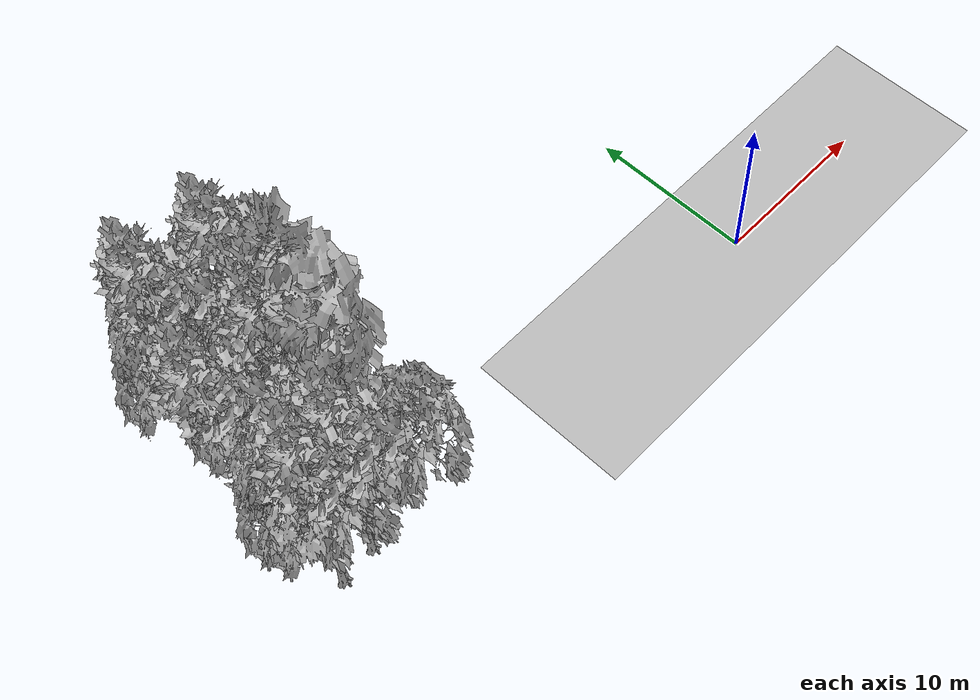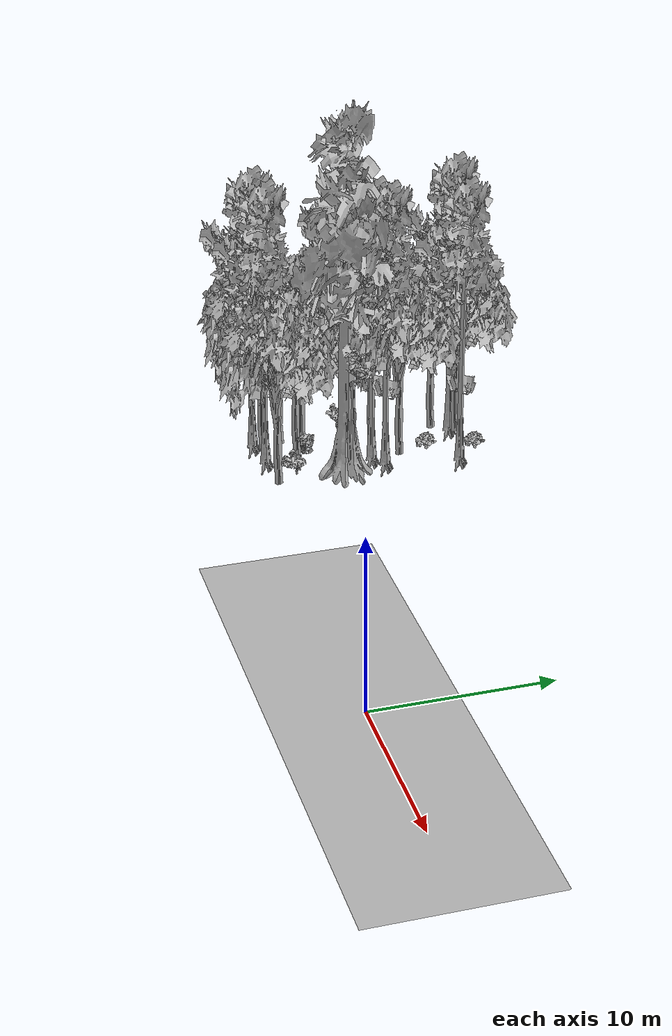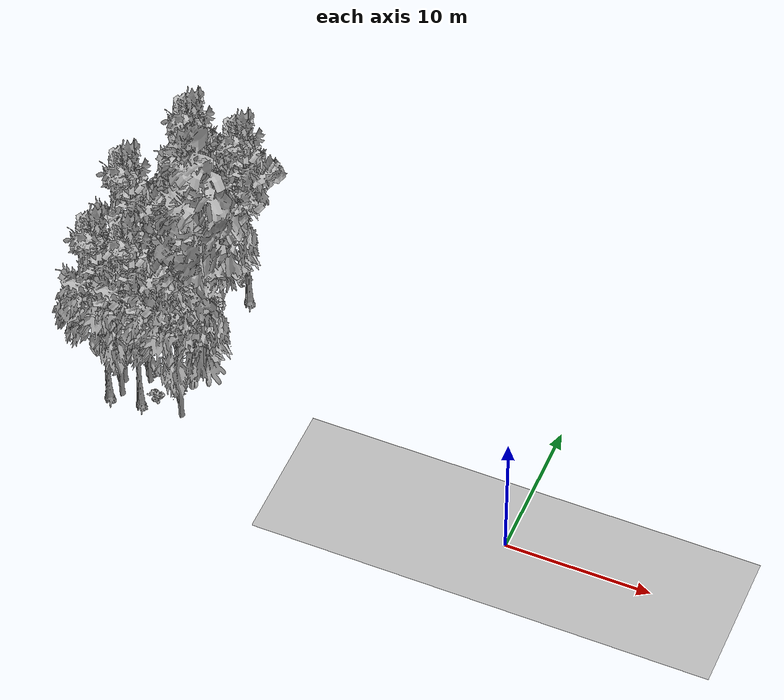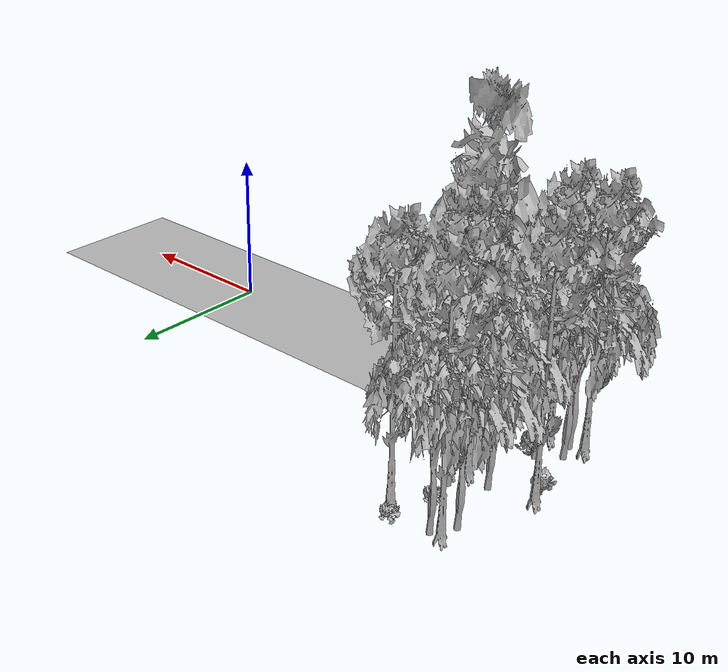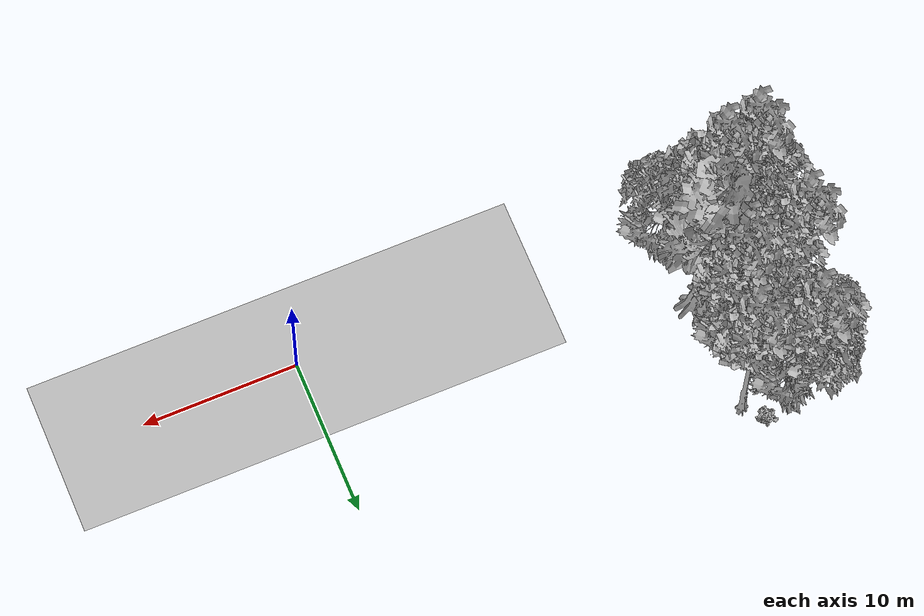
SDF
<sdf version="1.7">
 <world name="default">
  <model name="ground_plane">
   <static>1</static>
   <link name="link">
    <collision name="collision">
     <geometry><plane><normal>0 0 1</normal><size>100 100</size></plane></geometry>
     <surface><contact><ode><min_depth>0.01</min_depth><max_vel>0</max_vel></ode></contact></surface>
    </collision>
    <visual name="grass">
     <cast_shadows>0</cast_shadows>
     <geometry>
      <mesh>
       <scale>0.5814285714285714 0.18142857142857144 0.1</scale>
       <uri>file://grass_plane/meshes/grass_plane.dae</uri>
      </mesh>
     </geometry>
    </visual>
   </link>
  </model>
  <model name="Tree 0">
   <static>1</static>
   <pose>-26.765938401157396 1.6291997413746877 0 1.57079 -0 0</pose>
   <link name="link">
    <collision name="collision">
     <geometry><mesh><scale>3.5 5 3.5</scale><uri>model://tree_9/meshes/tree_9.obj</uri></mesh></geometry>
    </collision>
    <visual name="visual">
     <geometry><mesh><scale>3.5 5 3.5</scale><uri>model://tree_9/meshes/tree_9.obj</uri></mesh></geometry>
    </visual>
   </link>
  </model>
  <model name="Tree 20">
   <static>1</static>
   <pose>-24.108105005998816 5.87940821454001 0 1.57079 -0 0</pose>
   <link name="link">
    <collision name="collision">
     <geometry><mesh><scale>3.5 5 3.5</scale><uri>model://tree_4/meshes/tree_4.obj</uri></mesh></geometry>
    </collision>
    <visual name="visual">
     <geometry><mesh><scale>3.5 5 3.5</scale><uri>model://tree_4/meshes/tree_4.obj</uri></mesh></geometry>
    </visual>
   </link>
  </model>
  <model name="Tree 58">
   <static>1</static>
   <pose>-28.32884579286468 1.8087587821888427 0 1.57079 -0 0</pose>
   <link name="link">
    <collision name="collision">
     <geometry><mesh><scale>3.5 5 3.5</scale><uri>model://tree_2/meshes/tree_2.obj</uri></mesh></geometry>
    </collision>
    <visual name="visual">
     <geometry><mesh><scale>3.5 5 3.5</scale><uri>model://tree_2/meshes/tree_2.obj</uri></mesh></geometry>
    </visual>
   </link>
  </model>
  <model name="Tree 77">
   <static>1</static>
   <pose>-27.76972481168254 13.312691345991361 0 1.57079 -0 0</pose>
   <link name="link">
    <collision name="collision">
     <geometry><mesh><scale>3.5 5 3.5</scale><uri>model://tree_9/meshes/tree_9.obj</uri></mesh></geometry>
    </collision>
    <visual name="visual">
     <geometry><mesh><scale>3.5 5 3.5</scale><uri>model://tree_9/meshes/tree_9.obj</uri></mesh></geometry>
    </visual>
   </link>
  </model>
  <model name="Tree 116">
   <static>1</static>
   <pose>-27.437883329534912 3.9975551730333727 0 1.57079 -0 0</pose>
   <link name="link">
    <collision name="collision">
     <geometry><mesh><scale>3.5 5 3.5</scale><uri>model://tree_2/meshes/tree_2.obj</uri></mesh></geometry>
    </collision>
    <visual name="visual">
     <geometry><mesh><scale>3.5 5 3.5</scale><uri>model://tree_2/meshes/tree_2.obj</uri></mesh></geometry>
    </visual>
   </link>
  </model>
  <model name="Tree 128">
   <static>1</static>
   <pose>-27.10648469573524 3.5812322468863726 0 1.57079 -0 0</pose>
   <link name="link">
    <collision name="collision">
     <geometry><mesh><scale>3.5 5 3.5</scale><uri>model://tree_2/meshes/tree_2.obj</uri></mesh></geometry>
    </collision>
    <visual name="visual">
     <geometry><mesh><scale>3.5 5 3.5</scale><uri>model://tree_2/meshes/tree_2.obj</uri></mesh></geometry>
    </visual>
   </link>
  </model>
  <model name="Tree 153">
   <static>1</static>
   <pose>-23.937521418238035 12.766295501416778 0 1.57079 -0 0</pose>
   <link name="link">
    <collision name="collision">
     <geometry><mesh><scale>3.5 5 3.5</scale><uri>model://tree_9/meshes/tree_9.obj</uri></mesh></geometry>
    </collision>
    <visual name="visual">
     <geometry><mesh><scale>3.5 5 3.5</scale><uri>model://tree_9/meshes/tree_9.obj</uri></mesh></geometry>
    </visual>
   </link>
  </model>
  <model name="Tree 157">
   <static>1</static>
   <pose>-28.152756811206913 12.250893558476431 0 1.57079 -0 0</pose>
   <link name="link">
    <collision name="collision">
     <geometry><mesh><scale>3.5 5 3.5</scale><uri>model://tree_2/meshes/tree_2.obj</uri></mesh></geometry>
    </collision>
    <visual name="visual">
     <geometry><mesh><scale>3.5 5 3.5</scale><uri>model://tree_2/meshes/tree_2.obj</uri></mesh></geometry>
    </visual>
   </link>
  </model>
  <model name="Tree 193">
   <static>1</static>
   <pose>-29.5680853931389 7.384519042107609 0 1.57079 -0 0</pose>
   <link name="link">
    <collision name="collision">
     <geometry><mesh><scale>3.5 5 3.5</scale><uri>model://tree_9/meshes/tree_9.obj</uri></mesh></geometry>
    </collision>
    <visual name="visual">
     <geometry><mesh><scale>3.5 5 3.5</scale><uri>model://tree_9/meshes/tree_9.obj</uri></mesh></geometry>
    </visual>
   </link>
  </model>
  <model name="Tree 246">
   <static>1</static>
   <pose>-25.432156497267417 7.770978257374182 0 1.57079 -0 0</pose>
   <link name="link">
    <collision name="collision">
     <geometry><mesh><scale>3.5 5 3.5</scale><uri>model://tree_9/meshes/tree_9.obj</uri></mesh></geometry>
    </collision>
    <visual name="visual">
     <geometry><mesh><scale>3.5 5 3.5</scale><uri>model://tree_9/meshes/tree_9.obj</uri></mesh></geometry>
    </visual>
   </link>
  </model>
  <model name="Tree 250">
   <static>1</static>
   <pose>-28.95498736432072 1.381261641051804 0 1.57079 -0 0</pose>
   <link name="link">
    <collision name="collision">
     <geometry><mesh><scale>3.5 5 3.5</scale><uri>model://tree_9/meshes/tree_9.obj</uri></mesh></geometry>
    </collision>
    <visual name="visual">
     <geometry><mesh><scale>3.5 5 3.5</scale><uri>model://tree_9/meshes/tree_9.obj</uri></mesh></geometry>
    </visual>
   </link>
  </model>
  <model name="Tree 273">
   <static>1</static>
   <pose>-27.222267130076222 8.253918724868466 0 1.57079 -0 0</pose>
   <link name="link">
    <collision name="collision">
     <geometry><mesh><scale>3.5 5 3.5</scale><uri>model://tree_2/meshes/tree_2.obj</uri></mesh></geometry>
    </collision>
    <visual name="visual">
     <geometry><mesh><scale>3.5 5 3.5</scale><uri>model://tree_2/meshes/tree_2.obj</uri></mesh></geometry>
    </visual>
   </link>
  </model>
  <model name="Tree 335">
   <static>1</static>
   <pose>-25.413171679305535 9.440364775667529 0 1.57079 -0 0</pose>
   <link name="link">
    <collision name="collision">
     <geometry><mesh><scale>3.5 5 3.5</scale><uri>model://tree_2/meshes/tree_2.obj</uri></mesh></geometry>
    </collision>
    <visual name="visual">
     <geometry><mesh><scale>3.5 5 3.5</scale><uri>model://tree_2/meshes/tree_2.obj</uri></mesh></geometry>
    </visual>
   </link>
  </model>
  <model name="Tree 353">
   <static>1</static>
   <pose>-23.90040958281782 1.6610924427997595 0 1.57079 -0 0</pose>
   <link name="link">
    <collision name="collision">
     <geometry><mesh><scale>3.5 5 3.5</scale><uri>model://tree_2/meshes/tree_2.obj</uri></mesh></geometry>
    </collision>
    <visual name="visual">
     <geometry><mesh><scale>3.5 5 3.5</scale><uri>model://tree_2/meshes/tree_2.obj</uri></mesh></geometry>
    </visual>
   </link>
  </model>
  <model name="Tree 382">
   <static>1</static>
   <pose>-24.590928591122168 8.374427896132506 0 1.57079 -0 0</pose>
   <link name="link">
    <collision name="collision">
     <geometry><mesh><scale>3.5 5 3.5</scale><uri>model://tree_9/meshes/tree_9.obj</uri></mesh></geometry>
    </collision>
    <visual name="visual">
     <geometry><mesh><scale>3.5 5 3.5</scale><uri>model://tree_9/meshes/tree_9.obj</uri></mesh></geometry>
    </visual>
   </link>
  </model>
  <model name="Tree 384">
   <static>1</static>
   <pose>-27.337363469104346 13.537280560174867 0 1.57079 -0 0</pose>
   <link name="link">
    <collision name="collision">
     <geometry><mesh><scale>3.5 5 3.5</scale><uri>model://tree_2/meshes/tree_2.obj</uri></mesh></geometry>
    </collision>
    <visual name="visual">
     <geometry><mesh><scale>3.5 5 3.5</scale><uri>model://tree_2/meshes/tree_2.obj</uri></mesh></geometry>
    </visual>
   </link>
  </model>
  <model name="Tree 411">
   <static>1</static>
   <pose>-28.656525295762556 2.939691461462001 0 1.57079 -0 0</pose>
   <link name="link">
    <collision name="collision">
     <geometry><mesh><scale>3.5 5 3.5</scale><uri>model://tree_2/meshes/tree_2.obj</uri></mesh></geometry>
    </collision>
    <visual name="visual">
     <geometry><mesh><scale>3.5 5 3.5</scale><uri>model://tree_2/meshes/tree_2.obj</uri></mesh></geometry>
    </visual>
   </link>
  </model>
  <model name="Bush 8">
   <static>1</static>
   <pose>-26.083205640974395 2.483799199129063 0 1.57079 -0 0</pose>
   <link name="link">
    <collision name="collision">
     <geometry><mesh><scale>2 2 2</scale><uri>model://bush_2/meshes/bush_2.obj</uri></mesh></geometry>
     <surface><contact><collide_without_contact>false</collide_without_contact></contact></surface>
    </collision>
    <visual name="visual">
     <geometry><mesh><scale>2 2 2</scale><uri>model://bush_2/meshes/bush_2.obj</uri></mesh></geometry>
    </visual>
   </link>
  </model>
  <model name="Bush 41">
   <static>1</static>
   <pose>-26.951338341727848 4.010756277549817 0 1.57079 -0 0</pose>
   <link name="link">
    <collision name="collision">
     <geometry><mesh><scale>2 2 2</scale><uri>model://bush_4/meshes/bush_4.obj</uri></mesh></geometry>
     <surface><contact><collide_without_contact>false</collide_without_contact></contact></surface>
    </collision>
    <visual name="visual">
     <geometry><mesh><scale>2 2 2</scale><uri>model://bush_4/meshes/bush_4.obj</uri></mesh></geometry>
    </visual>
   </link>
  </model>
  <model name="Bush 47">
   <static>1</static>
   <pose>-29.587103264177205 6.807982194938607 0 1.57079 -0 0</pose>
   <link name="link">
    <collision name="collision">
     <geometry><mesh><scale>2 2 2</scale><uri>model://bush_0/meshes/bush_0.obj</uri></mesh></geometry>
     <surface><contact><collide_without_contact>false</collide_without_contact></contact></surface>
    </collision>
    <visual name="visual">
     <geometry><mesh><scale>2 2 2</scale><uri>model://bush_0/meshes/bush_0.obj</uri></mesh></geometry>
    </visual>
   </link>
  </model>
  <model name="Bush 54">
   <static>1</static>
   <pose>-24.5584506794916 2.9581658524557746 0 1.57079 -0 0</pose>
   <link name="link">
    <collision name="collision">
     <geometry><mesh><scale>2 2 2</scale><uri>model://bush_0/meshes/bush_0.obj</uri></mesh></geometry>
     <surface><contact><collide_without_contact>false</collide_without_contact></contact></surface>
    </collision>
    <visual name="visual">
     <geometry><mesh><scale>2 2 2</scale><uri>model://bush_0/meshes/bush_0.obj</uri></mesh></geometry>
    </visual>
   </link>
  </model>
  <model name="Bush 99">
   <static>1</static>
   <pose>-25.59237336641849 11.283963613875688 0 1.57079 -0 0</pose>
   <link name="link">
    <collision name="collision">
     <geometry><mesh><scale>2 2 2</scale><uri>model://bush_3/meshes/bush_3.obj</uri></mesh></geometry>
     <surface><contact><collide_without_contact>false</collide_without_contact></contact></surface>
    </collision>
    <visual name="visual">
     <geometry><mesh><scale>2 2 2</scale><uri>model://bush_3/meshes/bush_3.obj</uri></mesh></geometry>
    </visual>
   </link>
  </model>
  <model name="Bush 235">
   <static>1</static>
   <pose>-24.886986013862348 14.091041026503284 0 1.57079 -0 0</pose>
   <link name="link">
    <collision name="collision">
     <geometry><mesh><scale>2 2 2</scale><uri>model://bush_3/meshes/bush_3.obj</uri></mesh></geometry>
     <surface><contact><collide_without_contact>false</collide_without_contact></contact></surface>
    </collision>
    <visual name="visual">
     <geometry><mesh><scale>2 2 2</scale><uri>model://bush_3/meshes/bush_3.obj</uri></mesh></geometry>
    </visual>
   </link>
  </model>
 </world>
</sdf>
